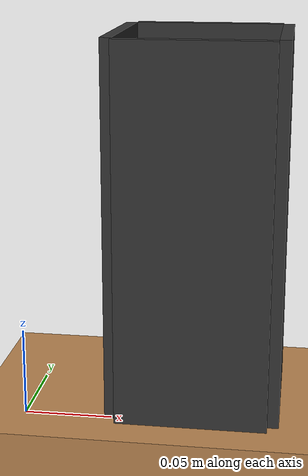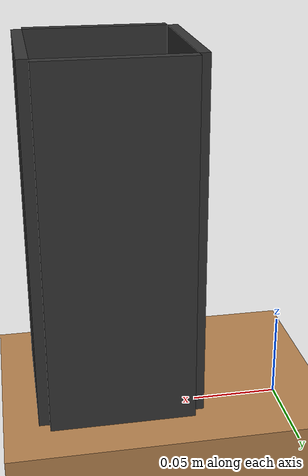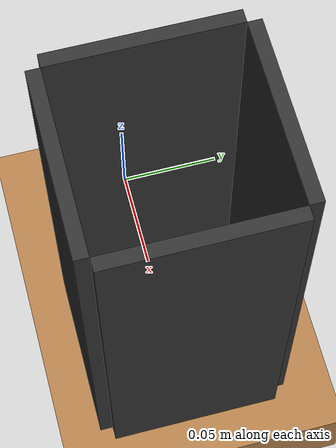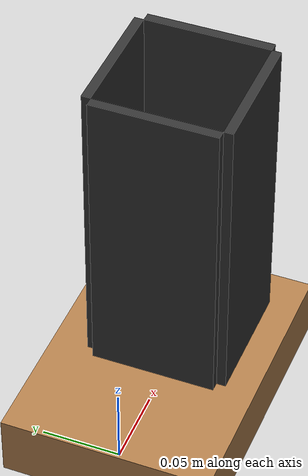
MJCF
<mujoco>
  <worldbody>
    <!-- 桌子 -->
    <body name="table" pos="0 0 0">
      <geom name="table_geom" type="box" size="0.3 0.3 0.02" rgba="0.7 0.5 0.3 1"/>
    </body>

    <body name="pen_holder" pos="0.1 0 0.02">
      <!-- 四面墙（厚度 3 mm，高 12 cm） -->
      <geom type="box" size="0.003 0.04 0.10" pos="0.043 0 0.10" rgba="0.2 0.2 0.2 1"/>
      <geom type="box" size="0.003 0.04 0.10" pos="-0.043 0 0.10" rgba="0.2 0.2 0.2 1"/>
      <geom type="box" size="0.04 0.003 0.10" pos="0 0.043 0.10" rgba="0.2 0.2 0.2 1"/>
      <geom type="box" size="0.04 0.003 0.10" pos="0 -0.043 0.10" rgba="0.2 0.2 0.2 1"/>

      <!-- 底面（厚度 3 mm） -->
      <geom type="box" size="0.04 0.04 0.003" pos="0 0 0.003" rgba="0.2 0.2 0.2 1"/>
    </body>

  </worldbody>
</mujoco>
